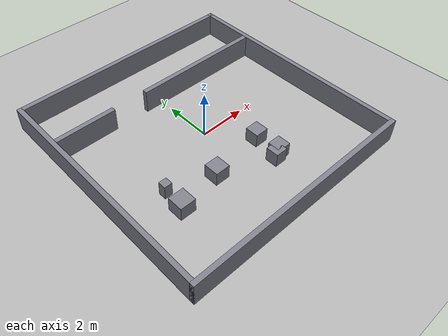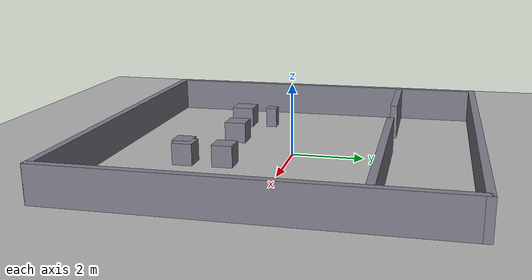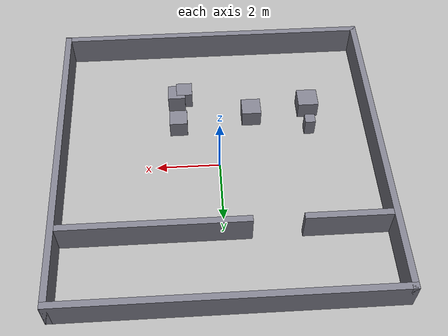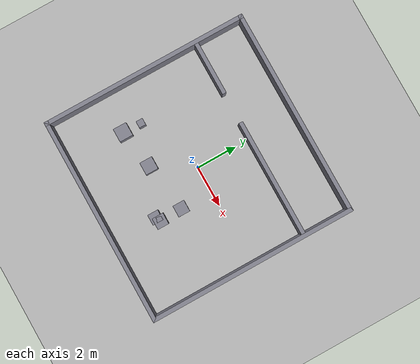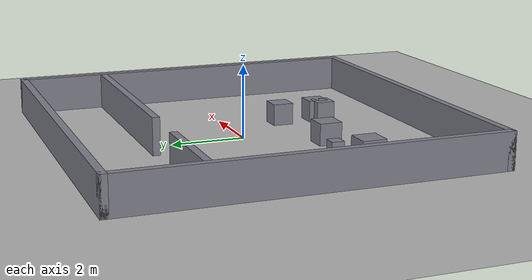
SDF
<?xml version="1.0"?>
<sdf version="1.10">
  <world name="scenario_14">
    <physics name="fast" type="ignored">
      <max_step_size>0.005</max_step_size>
      <real_time_factor>1.0</real_time_factor>
      <real_time_update_rate>200</real_time_update_rate>
    </physics>
    <plugin filename="gz-sim-physics-system" name="gz::sim::systems::Physics"/>
    <plugin filename="gz-sim-user-commands-system" name="gz::sim::systems::UserCommands"/>
    <plugin filename="gz-sim-scene-broadcaster-system" name="gz::sim::systems::SceneBroadcaster"/>
    <plugin filename="gz-sim-sensors-system" name="gz::sim::systems::Sensors">
      <render_engine>ogre2</render_engine>
    </plugin>
    <light type="directional" name="sun">
      <cast_shadows>false</cast_shadows>
      <pose>0 0 10 0 0 0</pose>
      <diffuse>0.9 0.9 0.9 1</diffuse>
      <direction>-0.5 0.2 -0.9</direction>
    </light>
    <model name="ground_plane">
      <static>true</static>
      <link name="link">
        <collision name="c"><geometry><plane><normal>0 0 1</normal><size>20 20</size></plane></geometry></collision>
        <visual name="v"><geometry><plane><normal>0 0 1</normal><size>20 20</size></plane></geometry>
          <material><ambient>0.7 0.7 0.7 1</ambient><diffuse>0.7 0.7 0.7 1</diffuse></material></visual>
      </link>
    </model>
    <model name="box_0">
      <static>true</static>
      <pose>0.0 5.0 0.5 0 0 0</pose>
      <link name="link">
        <collision name="c"><geometry><box><size>10.2 0.2 1.0</size></box></geometry></collision>
        <visual name="v"><geometry><box><size>10.2 0.2 1.0</size></box></geometry>
          <material><ambient>0.5 0.5 0.55 1</ambient><diffuse>0.5 0.5 0.55 1</diffuse></material></visual>
      </link>
    </model>
    <model name="box_1">
      <static>true</static>
      <pose>0.0 -5.0 0.5 0 0 0</pose>
      <link name="link">
        <collision name="c"><geometry><box><size>10.2 0.2 1.0</size></box></geometry></collision>
        <visual name="v"><geometry><box><size>10.2 0.2 1.0</size></box></geometry>
          <material><ambient>0.5 0.5 0.55 1</ambient><diffuse>0.5 0.5 0.55 1</diffuse></material></visual>
      </link>
    </model>
    <model name="box_2">
      <static>true</static>
      <pose>5.0 0.0 0.5 0 0 0</pose>
      <link name="link">
        <collision name="c"><geometry><box><size>0.2 10.2 1.0</size></box></geometry></collision>
        <visual name="v"><geometry><box><size>0.2 10.2 1.0</size></box></geometry>
          <material><ambient>0.5 0.5 0.55 1</ambient><diffuse>0.5 0.5 0.55 1</diffuse></material></visual>
      </link>
    </model>
    <model name="box_3">
      <static>true</static>
      <pose>-5.0 0.0 0.5 0 0 0</pose>
      <link name="link">
        <collision name="c"><geometry><box><size>0.2 10.2 1.0</size></box></geometry></collision>
        <visual name="v"><geometry><box><size>0.2 10.2 1.0</size></box></geometry>
          <material><ambient>0.5 0.5 0.55 1</ambient><diffuse>0.5 0.5 0.55 1</diffuse></material></visual>
      </link>
    </model>
    <model name="box_4">
      <static>true</static>
      <pose>-3.6032082296949017 2.64 0.5 0 0 0</pose>
      <link name="link">
        <collision name="c"><geometry><box><size>2.5935835406101977 0.2 1.0</size></box></geometry></collision>
        <visual name="v"><geometry><box><size>2.5935835406101977 0.2 1.0</size></box></geometry>
          <material><ambient>0.5 0.5 0.55 1</ambient><diffuse>0.5 0.5 0.55 1</diffuse></material></visual>
      </link>
    </model>
    <model name="box_5">
      <static>true</static>
      <pose>2.0467917703050986 2.64 0.5 0 0 0</pose>
      <link name="link">
        <collision name="c"><geometry><box><size>5.7064164593898035 0.2 1.0</size></box></geometry></collision>
        <visual name="v"><geometry><box><size>5.7064164593898035 0.2 1.0</size></box></geometry>
          <material><ambient>0.5 0.5 0.55 1</ambient><diffuse>0.5 0.5 0.55 1</diffuse></material></visual>
      </link>
    </model>
    <model name="box_6">
      <static>true</static>
      <pose>1.27 -1.58 0.3 0 0 0</pose>
      <link name="link">
        <collision name="c"><geometry><box><size>0.57 0.57 0.6</size></box></geometry></collision>
        <visual name="v"><geometry><box><size>0.57 0.57 0.6</size></box></geometry>
          <material><ambient>0.5 0.5 0.55 1</ambient><diffuse>0.5 0.5 0.55 1</diffuse></material></visual>
      </link>
    </model>
    <model name="box_7">
      <static>true</static>
      <pose>-3.05 -2.21 0.3 0 0 0</pose>
      <link name="link">
        <collision name="c"><geometry><box><size>0.66 0.66 0.6</size></box></geometry></collision>
        <visual name="v"><geometry><box><size>0.66 0.66 0.6</size></box></geometry>
          <material><ambient>0.5 0.5 0.55 1</ambient><diffuse>0.5 0.5 0.55 1</diffuse></material></visual>
      </link>
    </model>
    <model name="box_8">
      <static>true</static>
      <pose>-1.14 -1.92 0.3 0 0 0</pose>
      <link name="link">
        <collision name="c"><geometry><box><size>0.62 0.62 0.6</size></box></geometry></collision>
        <visual name="v"><geometry><box><size>0.62 0.62 0.6</size></box></geometry>
          <material><ambient>0.5 0.5 0.55 1</ambient><diffuse>0.5 0.5 0.55 1</diffuse></material></visual>
      </link>
    </model>
    <model name="box_9">
      <static>true</static>
      <pose>1.05 -2.8 0.3 0 0 0</pose>
      <link name="link">
        <collision name="c"><geometry><box><size>0.52 0.52 0.6</size></box></geometry></collision>
        <visual name="v"><geometry><box><size>0.52 0.52 0.6</size></box></geometry>
          <material><ambient>0.5 0.5 0.55 1</ambient><diffuse>0.5 0.5 0.55 1</diffuse></material></visual>
      </link>
    </model>
    <model name="box_10">
      <static>true</static>
      <pose>1.31 -2.68 0.3 0 0 0</pose>
      <link name="link">
        <collision name="c"><geometry><box><size>0.56 0.56 0.6</size></box></geometry></collision>
        <visual name="v"><geometry><box><size>0.56 0.56 0.6</size></box></geometry>
          <material><ambient>0.5 0.5 0.55 1</ambient><diffuse>0.5 0.5 0.55 1</diffuse></material></visual>
      </link>
    </model>
    <model name="box_11">
      <static>true</static>
      <pose>-3.02 -1.3 0.3 0 0 0</pose>
      <link name="link">
        <collision name="c"><geometry><box><size>0.33 0.33 0.6</size></box></geometry></collision>
        <visual name="v"><geometry><box><size>0.33 0.33 0.6</size></box></geometry>
          <material><ambient>0.5 0.5 0.55 1</ambient><diffuse>0.5 0.5 0.55 1</diffuse></material></visual>
      </link>
    </model>
  </world>
</sdf>
